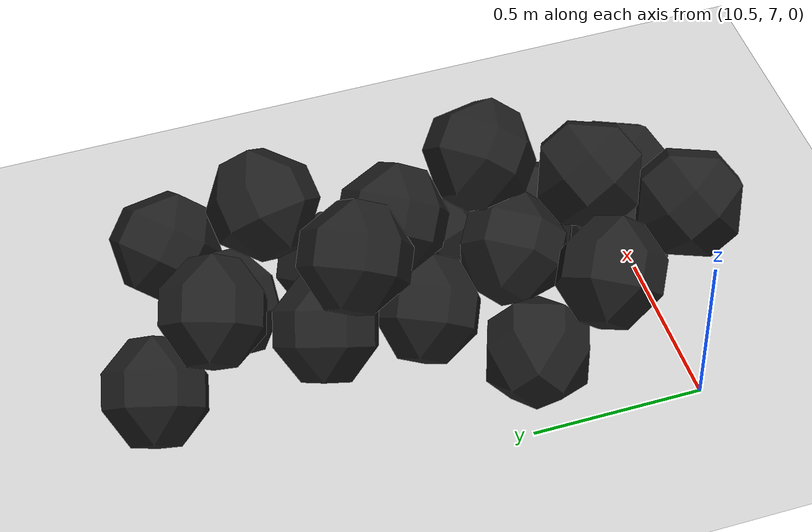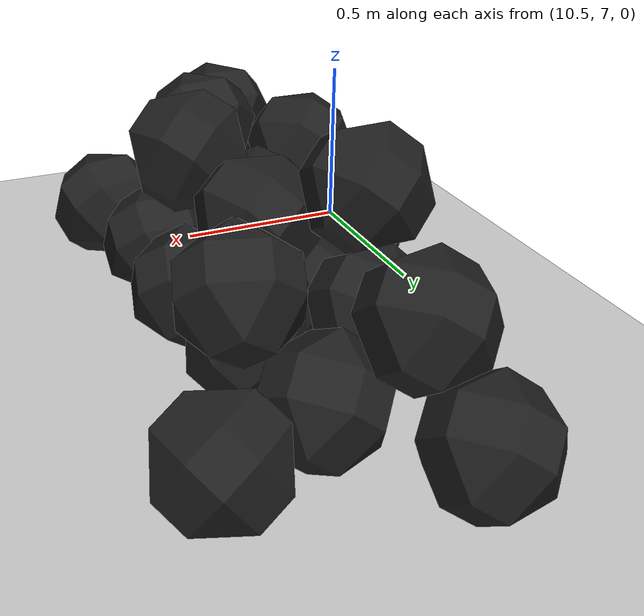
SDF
<sdf version="1.7">
 <world name="default">
  <model name="ground_plane">
   <static>1</static>
   <link name="link">
    <collision name="collision">
     <geometry><plane><normal>0 0 1</normal><size>100 100</size></plane></geometry>
     <surface><friction><ode><mu>100</mu><mu2>50</mu2></ode></friction></surface>
    </collision>
    <visual name="visual">
     <cast_shadows>0</cast_shadows>
     <geometry><plane><normal>0 0 1</normal><size>100 100</size></plane></geometry>
     <material>
      <script><uri>file://media/materials/scripts/gazebo.material</uri><name>Gazebo/Grey</name></script>
     </material>
    </visual>
   </link>
  </model>
  <model name="haoduomiantiaa_0">
   <link name="link_0">
    <inertial>
     <mass>0.2</mass>
     <inertia>
      <ixx>0.166667</ixx>
      <ixy>0</ixy>
      <ixz>0</ixz>
      <iyy>0.166667</iyy>
      <iyz>0</iyz>
      <izz>0.166667</izz>
     </inertia>
    </inertial>
    <visual name="visual">
     <geometry>
      <mesh>
       <uri>/home/lihaoyang/catkin_ws/src/pudong_gazebo/world/stl/haoduomianti.stl</uri>
       <scale>1 1 1</scale>
      </mesh>
     </geometry>
     <material>
      <lighting>1</lighting>
      <script><uri>file://media/materials/scripts/gazebo.material</uri><name>Gazebo/Black</name></script>
      <shader type="pixel"><normal_map>__default__</normal_map></shader>
      <ambient>0.3 0.3 0.3 1</ambient>
      <diffuse>0.7 0.7 0.7 1</diffuse>
      <specular>0.01 0.01 0.01 1</specular>
      <emissive>0 0 0 1</emissive>
     </material>
    </visual>
    <collision name="collision">
     <geometry>
      <mesh>
       <uri>/home/lihaoyang/catkin_ws/src/pudong_gazebo/world/stl/haoduomianti.stl</uri>
       <scale>1 1 1</scale>
      </mesh>
     </geometry>
     <surface>
      <friction>
       <ode><mu>1</mu><mu2>1</mu2><fdir1>0 0 0</fdir1><slip1>0</slip1><slip2>0</slip2></ode>
       <torsional>
        <coefficient>1</coefficient>
        <patch_radius>0</patch_radius>
        <surface_radius>0</surface_radius>
        <use_patch_radius>1</use_patch_radius>
        <ode><slip>0</slip></ode>
       </torsional>
      </friction>
      <bounce><restitution_coefficient>0</restitution_coefficient><threshold>1e+06</threshold></bounce>
      <contact>
       <collide_without_contact>0</collide_without_contact>
       <collide_without_contact_bitmask>1</collide_without_contact_bitmask>
       <collide_bitmask>1</collide_bitmask>
       <ode>
        <soft_cfm>0</soft_cfm>
        <soft_erp>0.2</soft_erp>
        <kp>1e+13</kp>
        <kd>1</kd>
        <max_vel>0.01</max_vel>
        <min_depth>0</min_depth>
       </ode>
       <bullet>
        <split_impulse>1</split_impulse>
        <split_impulse_penetration_threshold>-0.01</split_impulse_penetration_threshold>
        <soft_cfm>0</soft_cfm>
        <soft_erp>0.2</soft_erp>
        <kp>1e+13</kp>
        <kd>1</kd>
       </bullet>
      </contact>
     </surface>
    </collision>
   </link>
   <static>0</static>
   <pose>10.9723 7.07498 -0.114445 0.785431 -0.589548 -1.48621</pose>
  </model>
  <model name="haoduomiantiaa_9">
   <link name="link_0">
    <inertial>
     <mass>0.2</mass>
     <inertia>
      <ixx>0.166667</ixx>
      <ixy>0</ixy>
      <ixz>0</ixz>
      <iyy>0.166667</iyy>
      <iyz>0</iyz>
      <izz>0.166667</izz>
     </inertia>
    </inertial>
    <visual name="visual">
     <geometry>
      <mesh>
       <uri>/home/lihaoyang/catkin_ws/src/pudong_gazebo/world/stl/haoduomianti.stl</uri>
       <scale>1 1 1</scale>
      </mesh>
     </geometry>
     <material>
      <lighting>1</lighting>
      <script><uri>file://media/materials/scripts/gazebo.material</uri><name>Gazebo/Black</name></script>
      <shader type="pixel"><normal_map>__default__</normal_map></shader>
      <ambient>0.3 0.3 0.3 1</ambient>
      <diffuse>0.7 0.7 0.7 1</diffuse>
      <specular>0.01 0.01 0.01 1</specular>
      <emissive>0 0 0 1</emissive>
     </material>
    </visual>
    <collision name="collision">
     <geometry>
      <mesh>
       <uri>/home/lihaoyang/catkin_ws/src/pudong_gazebo/world/stl/haoduomianti.stl</uri>
       <scale>1 1 1</scale>
      </mesh>
     </geometry>
     <surface>
      <friction>
       <ode><mu>1</mu><mu2>1</mu2><fdir1>0 0 0</fdir1><slip1>0</slip1><slip2>0</slip2></ode>
       <torsional>
        <coefficient>1</coefficient>
        <patch_radius>0</patch_radius>
        <surface_radius>0</surface_radius>
        <use_patch_radius>1</use_patch_radius>
        <ode><slip>0</slip></ode>
       </torsional>
      </friction>
      <bounce><restitution_coefficient>0</restitution_coefficient><threshold>1e+06</threshold></bounce>
      <contact>
       <collide_without_contact>0</collide_without_contact>
       <collide_without_contact_bitmask>1</collide_without_contact_bitmask>
       <collide_bitmask>1</collide_bitmask>
       <ode>
        <soft_cfm>0</soft_cfm>
        <soft_erp>0.2</soft_erp>
        <kp>1e+13</kp>
        <kd>1</kd>
        <max_vel>0.01</max_vel>
        <min_depth>0</min_depth>
       </ode>
       <bullet>
        <split_impulse>1</split_impulse>
        <split_impulse_penetration_threshold>-0.01</split_impulse_penetration_threshold>
        <soft_cfm>0</soft_cfm>
        <soft_erp>0.2</soft_erp>
        <kp>1e+13</kp>
        <kd>1</kd>
       </bullet>
      </contact>
     </surface>
    </collision>
   </link>
   <static>0</static>
   <pose>10.7993 7.38438 -0.073529 0.039666 -0.784944 1.19033</pose>
  </model>
  <model name="haoduomiantiaa_17">
   <link name="link_0">
    <inertial>
     <mass>0.2</mass>
     <inertia>
      <ixx>0.166667</ixx>
      <ixy>0</ixy>
      <ixz>0</ixz>
      <iyy>0.166667</iyy>
      <iyz>0</iyz>
      <izz>0.166667</izz>
     </inertia>
    </inertial>
    <visual name="visual">
     <geometry>
      <mesh>
       <uri>/home/lihaoyang/catkin_ws/src/pudong_gazebo/world/stl/haoduomianti.stl</uri>
       <scale>1 1 1</scale>
      </mesh>
     </geometry>
     <material>
      <lighting>1</lighting>
      <script><uri>file://media/materials/scripts/gazebo.material</uri><name>Gazebo/Black</name></script>
      <shader type="pixel"><normal_map>__default__</normal_map></shader>
      <ambient>0.3 0.3 0.3 1</ambient>
      <diffuse>0.7 0.7 0.7 1</diffuse>
      <specular>0.01 0.01 0.01 1</specular>
      <emissive>0 0 0 1</emissive>
     </material>
    </visual>
    <collision name="collision">
     <geometry>
      <mesh>
       <uri>/home/lihaoyang/catkin_ws/src/pudong_gazebo/world/stl/haoduomianti.stl</uri>
       <scale>1 1 1</scale>
      </mesh>
     </geometry>
     <surface>
      <friction>
       <ode><mu>1</mu><mu2>1</mu2><fdir1>0 0 0</fdir1><slip1>0</slip1><slip2>0</slip2></ode>
       <torsional>
        <coefficient>1</coefficient>
        <patch_radius>0</patch_radius>
        <surface_radius>0</surface_radius>
        <use_patch_radius>1</use_patch_radius>
        <ode><slip>0</slip></ode>
       </torsional>
      </friction>
      <bounce><restitution_coefficient>0</restitution_coefficient><threshold>1e+06</threshold></bounce>
      <contact>
       <collide_without_contact>0</collide_without_contact>
       <collide_without_contact_bitmask>1</collide_without_contact_bitmask>
       <collide_bitmask>1</collide_bitmask>
       <ode>
        <soft_cfm>0</soft_cfm>
        <soft_erp>0.2</soft_erp>
        <kp>1e+13</kp>
        <kd>1</kd>
        <max_vel>0.01</max_vel>
        <min_depth>0</min_depth>
       </ode>
       <bullet>
        <split_impulse>1</split_impulse>
        <split_impulse_penetration_threshold>-0.01</split_impulse_penetration_threshold>
        <soft_cfm>0</soft_cfm>
        <soft_erp>0.2</soft_erp>
        <kp>1e+13</kp>
        <kd>1</kd>
       </bullet>
      </contact>
     </surface>
    </collision>
   </link>
   <static>0</static>
   <pose>10.9137 7.67298 -0.115967 0.785386 -0.615306 -0.458</pose>
  </model>
  <model name="haoduomiantiaa_18">
   <link name="link_0">
    <inertial>
     <mass>0.2</mass>
     <inertia>
      <ixx>0.166667</ixx>
      <ixy>0</ixy>
      <ixz>0</ixz>
      <iyy>0.166667</iyy>
      <iyz>0</iyz>
      <izz>0.166667</izz>
     </inertia>
    </inertial>
    <visual name="visual">
     <geometry>
      <mesh>
       <uri>/home/lihaoyang/catkin_ws/src/pudong_gazebo/world/stl/haoduomianti.stl</uri>
       <scale>1 1 1</scale>
      </mesh>
     </geometry>
     <material>
      <lighting>1</lighting>
      <script><uri>file://media/materials/scripts/gazebo.material</uri><name>Gazebo/Black</name></script>
      <shader type="pixel"><normal_map>__default__</normal_map></shader>
      <ambient>0.3 0.3 0.3 1</ambient>
      <diffuse>0.7 0.7 0.7 1</diffuse>
      <specular>0.01 0.01 0.01 1</specular>
      <emissive>0 0 0 1</emissive>
     </material>
    </visual>
    <collision name="collision">
     <geometry>
      <mesh>
       <uri>/home/lihaoyang/catkin_ws/src/pudong_gazebo/world/stl/haoduomianti.stl</uri>
       <scale>1 1 1</scale>
      </mesh>
     </geometry>
     <surface>
      <friction>
       <ode><mu>1</mu><mu2>1</mu2><fdir1>0 0 0</fdir1><slip1>0</slip1><slip2>0</slip2></ode>
       <torsional>
        <coefficient>1</coefficient>
        <patch_radius>0</patch_radius>
        <surface_radius>0</surface_radius>
        <use_patch_radius>1</use_patch_radius>
        <ode><slip>0</slip></ode>
       </torsional>
      </friction>
      <bounce><restitution_coefficient>0</restitution_coefficient><threshold>1e+06</threshold></bounce>
      <contact>
       <collide_without_contact>0</collide_without_contact>
       <collide_without_contact_bitmask>1</collide_without_contact_bitmask>
       <collide_bitmask>1</collide_bitmask>
       <ode>
        <soft_cfm>0</soft_cfm>
        <soft_erp>0.2</soft_erp>
        <kp>1e+13</kp>
        <kd>1</kd>
        <max_vel>0.01</max_vel>
        <min_depth>0</min_depth>
       </ode>
       <bullet>
        <split_impulse>1</split_impulse>
        <split_impulse_penetration_threshold>-0.01</split_impulse_penetration_threshold>
        <soft_cfm>0</soft_cfm>
        <soft_erp>0.2</soft_erp>
        <kp>1e+13</kp>
        <kd>1</kd>
       </bullet>
      </contact>
     </surface>
    </collision>
   </link>
   <static>0</static>
   <pose>11.1073 7.76353 -0.078327 0.1095 -0.782387 -0.480392</pose>
  </model>
  <model name="haoduomiantiaa_20">
   <link name="link_0">
    <inertial>
     <mass>0.2</mass>
     <inertia>
      <ixx>0.166667</ixx>
      <ixy>0</ixy>
      <ixz>0</ixz>
      <iyy>0.166667</iyy>
      <iyz>0</iyz>
      <izz>0.166667</izz>
     </inertia>
    </inertial>
    <visual name="visual">
     <geometry>
      <mesh>
       <uri>/home/lihaoyang/catkin_ws/src/pudong_gazebo/world/stl/haoduomianti.stl</uri>
       <scale>1 1 1</scale>
      </mesh>
     </geometry>
     <material>
      <lighting>1</lighting>
      <script><uri>file://media/materials/scripts/gazebo.material</uri><name>Gazebo/Black</name></script>
      <shader type="pixel"><normal_map>__default__</normal_map></shader>
      <ambient>0.3 0.3 0.3 1</ambient>
      <diffuse>0.7 0.7 0.7 1</diffuse>
      <specular>0.01 0.01 0.01 1</specular>
      <emissive>0 0 0 1</emissive>
     </material>
    </visual>
    <collision name="collision">
     <geometry>
      <mesh>
       <uri>/home/lihaoyang/catkin_ws/src/pudong_gazebo/world/stl/haoduomianti.stl</uri>
       <scale>1 1 1</scale>
      </mesh>
     </geometry>
     <surface>
      <friction>
       <ode><mu>1</mu><mu2>1</mu2><fdir1>0 0 0</fdir1><slip1>0</slip1><slip2>0</slip2></ode>
       <torsional>
        <coefficient>1</coefficient>
        <patch_radius>0</patch_radius>
        <surface_radius>0</surface_radius>
        <use_patch_radius>1</use_patch_radius>
        <ode><slip>0</slip></ode>
       </torsional>
      </friction>
      <bounce><restitution_coefficient>0</restitution_coefficient><threshold>1e+06</threshold></bounce>
      <contact>
       <collide_without_contact>0</collide_without_contact>
       <collide_without_contact_bitmask>1</collide_without_contact_bitmask>
       <collide_bitmask>1</collide_bitmask>
       <ode>
        <soft_cfm>0</soft_cfm>
        <soft_erp>0.2</soft_erp>
        <kp>1e+13</kp>
        <kd>1</kd>
        <max_vel>0.01</max_vel>
        <min_depth>0</min_depth>
       </ode>
       <bullet>
        <split_impulse>1</split_impulse>
        <split_impulse_penetration_threshold>-0.01</split_impulse_penetration_threshold>
        <soft_cfm>0</soft_cfm>
        <soft_erp>0.2</soft_erp>
        <kp>1e+13</kp>
        <kd>1</kd>
       </bullet>
      </contact>
     </surface>
    </collision>
   </link>
   <static>0</static>
   <pose>10.902 7.96113 -0.04447 0.72085 -0.741952 -0.305091</pose>
  </model>
  <model name="haoduomiantiaa_25">
   <link name="link_0">
    <inertial>
     <mass>0.2</mass>
     <inertia>
      <ixx>0.166667</ixx>
      <ixy>0</ixy>
      <ixz>0</ixz>
      <iyy>0.166667</iyy>
      <iyz>0</iyz>
      <izz>0.166667</izz>
     </inertia>
    </inertial>
    <visual name="visual">
     <geometry>
      <mesh>
       <uri>/home/lihaoyang/catkin_ws/src/pudong_gazebo/world/stl/haoduomianti.stl</uri>
       <scale>1 1 1</scale>
      </mesh>
     </geometry>
     <material>
      <lighting>1</lighting>
      <script><uri>file://media/materials/scripts/gazebo.material</uri><name>Gazebo/Black</name></script>
      <shader type="pixel"><normal_map>__default__</normal_map></shader>
      <ambient>0.3 0.3 0.3 1</ambient>
      <diffuse>0.7 0.7 0.7 1</diffuse>
      <specular>0.01 0.01 0.01 1</specular>
      <emissive>0 0 0 1</emissive>
     </material>
    </visual>
    <collision name="collision">
     <geometry>
      <mesh>
       <uri>/home/lihaoyang/catkin_ws/src/pudong_gazebo/world/stl/haoduomianti.stl</uri>
       <scale>1 1 1</scale>
      </mesh>
     </geometry>
     <surface>
      <friction>
       <ode><mu>1</mu><mu2>1</mu2><fdir1>0 0 0</fdir1><slip1>0</slip1><slip2>0</slip2></ode>
       <torsional>
        <coefficient>1</coefficient>
        <patch_radius>0</patch_radius>
        <surface_radius>0</surface_radius>
        <use_patch_radius>1</use_patch_radius>
        <ode><slip>0</slip></ode>
       </torsional>
      </friction>
      <bounce><restitution_coefficient>0</restitution_coefficient><threshold>1e+06</threshold></bounce>
      <contact>
       <collide_without_contact>0</collide_without_contact>
       <collide_without_contact_bitmask>1</collide_without_contact_bitmask>
       <collide_bitmask>1</collide_bitmask>
       <ode>
        <soft_cfm>0</soft_cfm>
        <soft_erp>0.2</soft_erp>
        <kp>1e+13</kp>
        <kd>1</kd>
        <max_vel>0.01</max_vel>
        <min_depth>0</min_depth>
       </ode>
       <bullet>
        <split_impulse>1</split_impulse>
        <split_impulse_penetration_threshold>-0.01</split_impulse_penetration_threshold>
        <soft_cfm>0</soft_cfm>
        <soft_erp>0.2</soft_erp>
        <kp>1e+13</kp>
        <kd>1</kd>
       </bullet>
      </contact>
     </surface>
    </collision>
   </link>
   <static>0</static>
   <pose>11.1221 8.16661 -0.106418 0.785399 -0.437494 1.99127</pose>
  </model>
  <model name="haoduomiantiaa_30">
   <link name="link_0">
    <inertial>
     <mass>0.2</mass>
     <inertia>
      <ixx>0.166667</ixx>
      <ixy>0</ixy>
      <ixz>0</ixz>
      <iyy>0.166667</iyy>
      <iyz>0</iyz>
      <izz>0.166667</izz>
     </inertia>
    </inertial>
    <visual name="visual">
     <geometry>
      <mesh>
       <uri>/home/lihaoyang/catkin_ws/src/pudong_gazebo/world/stl/haoduomianti.stl</uri>
       <scale>1 1 1</scale>
      </mesh>
     </geometry>
     <material>
      <lighting>1</lighting>
      <script><uri>file://media/materials/scripts/gazebo.material</uri><name>Gazebo/Black</name></script>
      <shader type="pixel"><normal_map>__default__</normal_map></shader>
      <ambient>0.3 0.3 0.3 1</ambient>
      <diffuse>0.7 0.7 0.7 1</diffuse>
      <specular>0.01 0.01 0.01 1</specular>
      <emissive>0 0 0 1</emissive>
     </material>
    </visual>
    <collision name="collision">
     <geometry>
      <mesh>
       <uri>/home/lihaoyang/catkin_ws/src/pudong_gazebo/world/stl/haoduomianti.stl</uri>
       <scale>1 1 1</scale>
      </mesh>
     </geometry>
     <surface>
      <friction>
       <ode><mu>1</mu><mu2>1</mu2><fdir1>0 0 0</fdir1><slip1>0</slip1><slip2>0</slip2></ode>
       <torsional>
        <coefficient>1</coefficient>
        <patch_radius>0</patch_radius>
        <surface_radius>0</surface_radius>
        <use_patch_radius>1</use_patch_radius>
        <ode><slip>0</slip></ode>
       </torsional>
      </friction>
      <bounce><restitution_coefficient>0</restitution_coefficient><threshold>1e+06</threshold></bounce>
      <contact>
       <collide_without_contact>0</collide_without_contact>
       <collide_without_contact_bitmask>1</collide_without_contact_bitmask>
       <collide_bitmask>1</collide_bitmask>
       <ode>
        <soft_cfm>0</soft_cfm>
        <soft_erp>0.2</soft_erp>
        <kp>1e+13</kp>
        <kd>1</kd>
        <max_vel>0.01</max_vel>
        <min_depth>0</min_depth>
       </ode>
       <bullet>
        <split_impulse>1</split_impulse>
        <split_impulse_penetration_threshold>-0.01</split_impulse_penetration_threshold>
        <soft_cfm>0</soft_cfm>
        <soft_erp>0.2</soft_erp>
        <kp>1e+13</kp>
        <kd>1</kd>
       </bullet>
      </contact>
     </surface>
    </collision>
   </link>
   <static>0</static>
   <pose>11.1895 7.27631 -0.115438 0.786446 -0.615971 -1.58038</pose>
  </model>
  <model name="haoduomiantiaa_36">
   <link name="link_0">
    <inertial>
     <mass>0.2</mass>
     <inertia>
      <ixx>0.166667</ixx>
      <ixy>0</ixy>
      <ixz>0</ixz>
      <iyy>0.166667</iyy>
      <iyz>0</iyz>
      <izz>0.166667</izz>
     </inertia>
    </inertial>
    <visual name="visual">
     <geometry>
      <mesh>
       <uri>/home/lihaoyang/catkin_ws/src/pudong_gazebo/world/stl/haoduomianti.stl</uri>
       <scale>1 1 1</scale>
      </mesh>
     </geometry>
     <material>
      <lighting>1</lighting>
      <script><uri>file://media/materials/scripts/gazebo.material</uri><name>Gazebo/Black</name></script>
      <shader type="pixel"><normal_map>__default__</normal_map></shader>
      <ambient>0.3 0.3 0.3 1</ambient>
      <diffuse>0.7 0.7 0.7 1</diffuse>
      <specular>0.01 0.01 0.01 1</specular>
      <emissive>0 0 0 1</emissive>
     </material>
    </visual>
    <collision name="collision">
     <geometry>
      <mesh>
       <uri>/home/lihaoyang/catkin_ws/src/pudong_gazebo/world/stl/haoduomianti.stl</uri>
       <scale>1 1 1</scale>
      </mesh>
     </geometry>
     <surface>
      <friction>
       <ode><mu>1</mu><mu2>1</mu2><fdir1>0 0 0</fdir1><slip1>0</slip1><slip2>0</slip2></ode>
       <torsional>
        <coefficient>1</coefficient>
        <patch_radius>0</patch_radius>
        <surface_radius>0</surface_radius>
        <use_patch_radius>1</use_patch_radius>
        <ode><slip>0</slip></ode>
       </torsional>
      </friction>
      <bounce><restitution_coefficient>0</restitution_coefficient><threshold>1e+06</threshold></bounce>
      <contact>
       <collide_without_contact>0</collide_without_contact>
       <collide_without_contact_bitmask>1</collide_without_contact_bitmask>
       <collide_bitmask>1</collide_bitmask>
       <ode>
        <soft_cfm>0</soft_cfm>
        <soft_erp>0.2</soft_erp>
        <kp>1e+13</kp>
        <kd>1</kd>
        <max_vel>0.01</max_vel>
        <min_depth>0</min_depth>
       </ode>
       <bullet>
        <split_impulse>1</split_impulse>
        <split_impulse_penetration_threshold>-0.01</split_impulse_penetration_threshold>
        <soft_cfm>0</soft_cfm>
        <soft_erp>0.2</soft_erp>
        <kp>1e+13</kp>
        <kd>1</kd>
       </bullet>
      </contact>
     </surface>
    </collision>
   </link>
   <static>0</static>
   <pose>10.8976 7.45353 0.017799 0.455478 -0.67998 -2.44371</pose>
  </model>
  <model name="haoduomiantiaa_47">
   <link name="link_0">
    <inertial>
     <mass>0.2</mass>
     <inertia>
      <ixx>0.166667</ixx>
      <ixy>0</ixy>
      <ixz>0</ixz>
      <iyy>0.166667</iyy>
      <iyz>0</iyz>
      <izz>0.166667</izz>
     </inertia>
    </inertial>
    <visual name="visual">
     <geometry>
      <mesh>
       <uri>/home/lihaoyang/catkin_ws/src/pudong_gazebo/world/stl/haoduomianti.stl</uri>
       <scale>1 1 1</scale>
      </mesh>
     </geometry>
     <material>
      <lighting>1</lighting>
      <script><uri>file://media/materials/scripts/gazebo.material</uri><name>Gazebo/Black</name></script>
      <shader type="pixel"><normal_map>__default__</normal_map></shader>
      <ambient>0.3 0.3 0.3 1</ambient>
      <diffuse>0.7 0.7 0.7 1</diffuse>
      <specular>0.01 0.01 0.01 1</specular>
      <emissive>0 0 0 1</emissive>
     </material>
    </visual>
    <collision name="collision">
     <geometry>
      <mesh>
       <uri>/home/lihaoyang/catkin_ws/src/pudong_gazebo/world/stl/haoduomianti.stl</uri>
       <scale>1 1 1</scale>
      </mesh>
     </geometry>
     <surface>
      <friction>
       <ode><mu>1</mu><mu2>1</mu2><fdir1>0 0 0</fdir1><slip1>0</slip1><slip2>0</slip2></ode>
       <torsional>
        <coefficient>1</coefficient>
        <patch_radius>0</patch_radius>
        <surface_radius>0</surface_radius>
        <use_patch_radius>1</use_patch_radius>
        <ode><slip>0</slip></ode>
       </torsional>
      </friction>
      <bounce><restitution_coefficient>0</restitution_coefficient><threshold>1e+06</threshold></bounce>
      <contact>
       <collide_without_contact>0</collide_without_contact>
       <collide_without_contact_bitmask>1</collide_without_contact_bitmask>
       <collide_bitmask>1</collide_bitmask>
       <ode>
        <soft_cfm>0</soft_cfm>
        <soft_erp>0.2</soft_erp>
        <kp>1e+13</kp>
        <kd>1</kd>
        <max_vel>0.01</max_vel>
        <min_depth>0</min_depth>
       </ode>
       <bullet>
        <split_impulse>1</split_impulse>
        <split_impulse_penetration_threshold>-0.01</split_impulse_penetration_threshold>
        <soft_cfm>0</soft_cfm>
        <soft_erp>0.2</soft_erp>
        <kp>1e+13</kp>
        <kd>1</kd>
       </bullet>
      </contact>
     </surface>
    </collision>
   </link>
   <static>0</static>
   <pose>11.2126 7.57384 -0.113089 0.726808 -0.641761 0.38696</pose>
  </model>
  <model name="haoduomiantiaa_54">
   <link name="link_0">
    <inertial>
     <mass>0.2</mass>
     <inertia>
      <ixx>0.166667</ixx>
      <ixy>0</ixy>
      <ixz>0</ixz>
      <iyy>0.166667</iyy>
      <iyz>0</iyz>
      <izz>0.166667</izz>
     </inertia>
    </inertial>
    <visual name="visual">
     <geometry>
      <mesh>
       <uri>/home/lihaoyang/catkin_ws/src/pudong_gazebo/world/stl/haoduomianti.stl</uri>
       <scale>1 1 1</scale>
      </mesh>
     </geometry>
     <material>
      <lighting>1</lighting>
      <script><uri>file://media/materials/scripts/gazebo.material</uri><name>Gazebo/Black</name></script>
      <shader type="pixel"><normal_map>__default__</normal_map></shader>
      <ambient>0.3 0.3 0.3 1</ambient>
      <diffuse>0.7 0.7 0.7 1</diffuse>
      <specular>0.01 0.01 0.01 1</specular>
      <emissive>0 0 0 1</emissive>
     </material>
    </visual>
    <collision name="collision">
     <geometry>
      <mesh>
       <uri>/home/lihaoyang/catkin_ws/src/pudong_gazebo/world/stl/haoduomianti.stl</uri>
       <scale>1 1 1</scale>
      </mesh>
     </geometry>
     <surface>
      <friction>
       <ode><mu>1</mu><mu2>1</mu2><fdir1>0 0 0</fdir1><slip1>0</slip1><slip2>0</slip2></ode>
       <torsional>
        <coefficient>1</coefficient>
        <patch_radius>0</patch_radius>
        <surface_radius>0</surface_radius>
        <use_patch_radius>1</use_patch_radius>
        <ode><slip>0</slip></ode>
       </torsional>
      </friction>
      <bounce><restitution_coefficient>0</restitution_coefficient><threshold>1e+06</threshold></bounce>
      <contact>
       <collide_without_contact>0</collide_without_contact>
       <collide_without_contact_bitmask>1</collide_without_contact_bitmask>
       <collide_bitmask>1</collide_bitmask>
       <ode>
        <soft_cfm>0</soft_cfm>
        <soft_erp>0.2</soft_erp>
        <kp>1e+13</kp>
        <kd>1</kd>
        <max_vel>0.01</max_vel>
        <min_depth>0</min_depth>
       </ode>
       <bullet>
        <split_impulse>1</split_impulse>
        <split_impulse_penetration_threshold>-0.01</split_impulse_penetration_threshold>
        <soft_cfm>0</soft_cfm>
        <soft_erp>0.2</soft_erp>
        <kp>1e+13</kp>
        <kd>1</kd>
       </bullet>
      </contact>
     </surface>
    </collision>
   </link>
   <static>0</static>
   <pose>11.2492 7.00829 -0.107902 0.956609 -0.685152 0.658454</pose>
  </model>
  <model name="haoduomiantiaa_74">
   <link name="link_0">
    <inertial>
     <mass>0.2</mass>
     <inertia>
      <ixx>0.166667</ixx>
      <ixy>0</ixy>
      <ixz>0</ixz>
      <iyy>0.166667</iyy>
      <iyz>0</iyz>
      <izz>0.166667</izz>
     </inertia>
    </inertial>
    <visual name="visual">
     <geometry>
      <mesh>
       <uri>/home/lihaoyang/catkin_ws/src/pudong_gazebo/world/stl/haoduomianti.stl</uri>
       <scale>1 1 1</scale>
      </mesh>
     </geometry>
     <material>
      <lighting>1</lighting>
      <script><uri>file://media/materials/scripts/gazebo.material</uri><name>Gazebo/Black</name></script>
      <shader type="pixel"><normal_map>__default__</normal_map></shader>
      <ambient>0.3 0.3 0.3 1</ambient>
      <diffuse>0.7 0.7 0.7 1</diffuse>
      <specular>0.01 0.01 0.01 1</specular>
      <emissive>0 0 0 1</emissive>
     </material>
    </visual>
    <collision name="collision">
     <geometry>
      <mesh>
       <uri>/home/lihaoyang/catkin_ws/src/pudong_gazebo/world/stl/haoduomianti.stl</uri>
       <scale>1 1 1</scale>
      </mesh>
     </geometry>
     <surface>
      <friction>
       <ode><mu>1</mu><mu2>1</mu2><fdir1>0 0 0</fdir1><slip1>0</slip1><slip2>0</slip2></ode>
       <torsional>
        <coefficient>1</coefficient>
        <patch_radius>0</patch_radius>
        <surface_radius>0</surface_radius>
        <use_patch_radius>1</use_patch_radius>
        <ode><slip>0</slip></ode>
       </torsional>
      </friction>
      <bounce><restitution_coefficient>0</restitution_coefficient><threshold>1e+06</threshold></bounce>
      <contact>
       <collide_without_contact>0</collide_without_contact>
       <collide_without_contact_bitmask>1</collide_without_contact_bitmask>
       <collide_bitmask>1</collide_bitmask>
       <ode>
        <soft_cfm>0</soft_cfm>
        <soft_erp>0.2</soft_erp>
        <kp>1e+13</kp>
        <kd>1</kd>
        <max_vel>0.01</max_vel>
        <min_depth>0</min_depth>
       </ode>
       <bullet>
        <split_impulse>1</split_impulse>
        <split_impulse_penetration_threshold>-0.01</split_impulse_penetration_threshold>
        <soft_cfm>0</soft_cfm>
        <soft_erp>0.2</soft_erp>
        <kp>1e+13</kp>
        <kd>1</kd>
       </bullet>
      </contact>
     </surface>
    </collision>
   </link>
   <static>0</static>
   <pose>11.2385 8.05949 0.109585 0.782162 -0.640487 2.3146</pose>
  </model>
  <model name="haoduomiantiaa_84">
   <link name="link_0">
    <inertial>
     <mass>0.2</mass>
     <inertia>
      <ixx>0.166667</ixx>
      <ixy>0</ixy>
      <ixz>0</ixz>
      <iyy>0.166667</iyy>
      <iyz>0</iyz>
      <izz>0.166667</izz>
     </inertia>
    </inertial>
    <visual name="visual">
     <geometry>
      <mesh>
       <uri>/home/lihaoyang/catkin_ws/src/pudong_gazebo/world/stl/haoduomianti.stl</uri>
       <scale>1 1 1</scale>
      </mesh>
     </geometry>
     <material>
      <lighting>1</lighting>
      <script><uri>file://media/materials/scripts/gazebo.material</uri><name>Gazebo/Black</name></script>
      <shader type="pixel"><normal_map>__default__</normal_map></shader>
      <ambient>0.3 0.3 0.3 1</ambient>
      <diffuse>0.7 0.7 0.7 1</diffuse>
      <specular>0.01 0.01 0.01 1</specular>
      <emissive>0 0 0 1</emissive>
     </material>
    </visual>
    <collision name="collision">
     <geometry>
      <mesh>
       <uri>/home/lihaoyang/catkin_ws/src/pudong_gazebo/world/stl/haoduomianti.stl</uri>
       <scale>1 1 1</scale>
      </mesh>
     </geometry>
     <surface>
      <friction>
       <ode><mu>1</mu><mu2>1</mu2><fdir1>0 0 0</fdir1><slip1>0</slip1><slip2>0</slip2></ode>
       <torsional>
        <coefficient>1</coefficient>
        <patch_radius>0</patch_radius>
        <surface_radius>0</surface_radius>
        <use_patch_radius>1</use_patch_radius>
        <ode><slip>0</slip></ode>
       </torsional>
      </friction>
      <bounce><restitution_coefficient>0</restitution_coefficient><threshold>1e+06</threshold></bounce>
      <contact>
       <collide_without_contact>0</collide_without_contact>
       <collide_without_contact_bitmask>1</collide_without_contact_bitmask>
       <collide_bitmask>1</collide_bitmask>
       <ode>
        <soft_cfm>0</soft_cfm>
        <soft_erp>0.2</soft_erp>
        <kp>1e+13</kp>
        <kd>1</kd>
        <max_vel>0.01</max_vel>
        <min_depth>0</min_depth>
       </ode>
       <bullet>
        <split_impulse>1</split_impulse>
        <split_impulse_penetration_threshold>-0.01</split_impulse_penetration_threshold>
        <soft_cfm>0</soft_cfm>
        <soft_erp>0.2</soft_erp>
        <kp>1e+13</kp>
        <kd>1</kd>
       </bullet>
      </contact>
     </surface>
    </collision>
   </link>
   <static>0</static>
   <pose>11.384 8.3173 -0.115478 0.78538 -0.615499 -2.94543</pose>
  </model>
  <model name="haoduomiantiaa_91">
   <link name="link_0">
    <inertial>
     <mass>0.2</mass>
     <inertia>
      <ixx>0.166667</ixx>
      <ixy>0</ixy>
      <ixz>0</ixz>
      <iyy>0.166667</iyy>
      <iyz>0</iyz>
      <izz>0.166667</izz>
     </inertia>
    </inertial>
    <visual name="visual">
     <geometry>
      <mesh>
       <uri>/home/lihaoyang/catkin_ws/src/pudong_gazebo/world/stl/haoduomianti.stl</uri>
       <scale>1 1 1</scale>
      </mesh>
     </geometry>
     <material>
      <lighting>1</lighting>
      <script><uri>file://media/materials/scripts/gazebo.material</uri><name>Gazebo/Black</name></script>
      <shader type="pixel"><normal_map>__default__</normal_map></shader>
      <ambient>0.3 0.3 0.3 1</ambient>
      <diffuse>0.7 0.7 0.7 1</diffuse>
      <specular>0.01 0.01 0.01 1</specular>
      <emissive>0 0 0 1</emissive>
     </material>
    </visual>
    <collision name="collision">
     <geometry>
      <mesh>
       <uri>/home/lihaoyang/catkin_ws/src/pudong_gazebo/world/stl/haoduomianti.stl</uri>
       <scale>1 1 1</scale>
      </mesh>
     </geometry>
     <surface>
      <friction>
       <ode><mu>1</mu><mu2>1</mu2><fdir1>0 0 0</fdir1><slip1>0</slip1><slip2>0</slip2></ode>
       <torsional>
        <coefficient>1</coefficient>
        <patch_radius>0</patch_radius>
        <surface_radius>0</surface_radius>
        <use_patch_radius>1</use_patch_radius>
        <ode><slip>0</slip></ode>
       </torsional>
      </friction>
      <bounce><restitution_coefficient>0</restitution_coefficient><threshold>1e+06</threshold></bounce>
      <contact>
       <collide_without_contact>0</collide_without_contact>
       <collide_without_contact_bitmask>1</collide_without_contact_bitmask>
       <collide_bitmask>1</collide_bitmask>
       <ode>
        <soft_cfm>0</soft_cfm>
        <soft_erp>0.2</soft_erp>
        <kp>1e+13</kp>
        <kd>1</kd>
        <max_vel>0.01</max_vel>
        <min_depth>0</min_depth>
       </ode>
       <bullet>
        <split_impulse>1</split_impulse>
        <split_impulse_penetration_threshold>-0.01</split_impulse_penetration_threshold>
        <soft_cfm>0</soft_cfm>
        <soft_erp>0.2</soft_erp>
        <kp>1e+13</kp>
        <kd>1</kd>
       </bullet>
      </contact>
     </surface>
    </collision>
   </link>
   <static>0</static>
   <pose>10.8561 8.48035 -0.115526 0.785432 -0.615484 1.81669</pose>
  </model>
  <model name="haoduomiantiaa_93">
   <link name="link_0">
    <inertial>
     <mass>0.2</mass>
     <inertia>
      <ixx>0.166667</ixx>
      <ixy>0</ixy>
      <ixz>0</ixz>
      <iyy>0.166667</iyy>
      <iyz>0</iyz>
      <izz>0.166667</izz>
     </inertia>
    </inertial>
    <visual name="visual">
     <geometry>
      <mesh>
       <uri>/home/lihaoyang/catkin_ws/src/pudong_gazebo/world/stl/haoduomianti.stl</uri>
       <scale>1 1 1</scale>
      </mesh>
     </geometry>
     <material>
      <lighting>1</lighting>
      <script><uri>file://media/materials/scripts/gazebo.material</uri><name>Gazebo/Black</name></script>
      <shader type="pixel"><normal_map>__default__</normal_map></shader>
      <ambient>0.3 0.3 0.3 1</ambient>
      <diffuse>0.7 0.7 0.7 1</diffuse>
      <specular>0.01 0.01 0.01 1</specular>
      <emissive>0 0 0 1</emissive>
     </material>
    </visual>
    <collision name="collision">
     <geometry>
      <mesh>
       <uri>/home/lihaoyang/catkin_ws/src/pudong_gazebo/world/stl/haoduomianti.stl</uri>
       <scale>1 1 1</scale>
      </mesh>
     </geometry>
     <surface>
      <friction>
       <ode><mu>1</mu><mu2>1</mu2><fdir1>0 0 0</fdir1><slip1>0</slip1><slip2>0</slip2></ode>
       <torsional>
        <coefficient>1</coefficient>
        <patch_radius>0</patch_radius>
        <surface_radius>0</surface_radius>
        <use_patch_radius>1</use_patch_radius>
        <ode><slip>0</slip></ode>
       </torsional>
      </friction>
      <bounce><restitution_coefficient>0</restitution_coefficient><threshold>1e+06</threshold></bounce>
      <contact>
       <collide_without_contact>0</collide_without_contact>
       <collide_without_contact_bitmask>1</collide_without_contact_bitmask>
       <collide_bitmask>1</collide_bitmask>
       <ode>
        <soft_cfm>0</soft_cfm>
        <soft_erp>0.2</soft_erp>
        <kp>1e+13</kp>
        <kd>1</kd>
        <max_vel>0.01</max_vel>
        <min_depth>0</min_depth>
       </ode>
       <bullet>
        <split_impulse>1</split_impulse>
        <split_impulse_penetration_threshold>-0.01</split_impulse_penetration_threshold>
        <soft_cfm>0</soft_cfm>
        <soft_erp>0.2</soft_erp>
        <kp>1e+13</kp>
        <kd>1</kd>
       </bullet>
      </contact>
     </surface>
    </collision>
   </link>
   <static>0</static>
   <pose>10.8916 6.91854 0.112856 0.886094 -0.607603 -1.46419</pose>
  </model>
  <model name="haoduomiantiaa_96">
   <link name="link_0">
    <inertial>
     <mass>0.2</mass>
     <inertia>
      <ixx>0.166667</ixx>
      <ixy>0</ixy>
      <ixz>0</ixz>
      <iyy>0.166667</iyy>
      <iyz>0</iyz>
      <izz>0.166667</izz>
     </inertia>
    </inertial>
    <visual name="visual">
     <geometry>
      <mesh>
       <uri>/home/lihaoyang/catkin_ws/src/pudong_gazebo/world/stl/haoduomianti.stl</uri>
       <scale>1 1 1</scale>
      </mesh>
     </geometry>
     <material>
      <lighting>1</lighting>
      <script><uri>file://media/materials/scripts/gazebo.material</uri><name>Gazebo/Black</name></script>
      <shader type="pixel"><normal_map>__default__</normal_map></shader>
      <ambient>0.3 0.3 0.3 1</ambient>
      <diffuse>0.7 0.7 0.7 1</diffuse>
      <specular>0.01 0.01 0.01 1</specular>
      <emissive>0 0 0 1</emissive>
     </material>
    </visual>
    <collision name="collision">
     <geometry>
      <mesh>
       <uri>/home/lihaoyang/catkin_ws/src/pudong_gazebo/world/stl/haoduomianti.stl</uri>
       <scale>1 1 1</scale>
      </mesh>
     </geometry>
     <surface>
      <friction>
       <ode><mu>1</mu><mu2>1</mu2><fdir1>0 0 0</fdir1><slip1>0</slip1><slip2>0</slip2></ode>
       <torsional>
        <coefficient>1</coefficient>
        <patch_radius>0</patch_radius>
        <surface_radius>0</surface_radius>
        <use_patch_radius>1</use_patch_radius>
        <ode><slip>0</slip></ode>
       </torsional>
      </friction>
      <bounce><restitution_coefficient>0</restitution_coefficient><threshold>1e+06</threshold></bounce>
      <contact>
       <collide_without_contact>0</collide_without_contact>
       <collide_without_contact_bitmask>1</collide_without_contact_bitmask>
       <collide_bitmask>1</collide_bitmask>
       <ode>
        <soft_cfm>0</soft_cfm>
        <soft_erp>0.2</soft_erp>
        <kp>1e+13</kp>
        <kd>1</kd>
        <max_vel>0.01</max_vel>
        <min_depth>0</min_depth>
       </ode>
       <bullet>
        <split_impulse>1</split_impulse>
        <split_impulse_penetration_threshold>-0.01</split_impulse_penetration_threshold>
        <soft_cfm>0</soft_cfm>
        <soft_erp>0.2</soft_erp>
        <kp>1e+13</kp>
        <kd>1</kd>
       </bullet>
      </contact>
     </surface>
    </collision>
   </link>
   <static>0</static>
   <pose>11.1056 7.4585 0.211597 0.722255 -0.46797 -0.701604</pose>
  </model>
  <model name="haoduomiantiaa_99">
   <link name="link_0">
    <inertial>
     <mass>0.2</mass>
     <inertia>
      <ixx>0.166667</ixx>
      <ixy>0</ixy>
      <ixz>0</ixz>
      <iyy>0.166667</iyy>
      <iyz>0</iyz>
      <izz>0.166667</izz>
     </inertia>
    </inertial>
    <visual name="visual">
     <geometry>
      <mesh>
       <uri>/home/lihaoyang/catkin_ws/src/pudong_gazebo/world/stl/haoduomianti.stl</uri>
       <scale>1 1 1</scale>
      </mesh>
     </geometry>
     <material>
      <lighting>1</lighting>
      <script><uri>file://media/materials/scripts/gazebo.material</uri><name>Gazebo/Black</name></script>
      <shader type="pixel"><normal_map>__default__</normal_map></shader>
      <ambient>0.3 0.3 0.3 1</ambient>
      <diffuse>0.7 0.7 0.7 1</diffuse>
      <specular>0.01 0.01 0.01 1</specular>
      <emissive>0 0 0 1</emissive>
     </material>
    </visual>
    <collision name="collision">
     <geometry>
      <mesh>
       <uri>/home/lihaoyang/catkin_ws/src/pudong_gazebo/world/stl/haoduomianti.stl</uri>
       <scale>1 1 1</scale>
      </mesh>
     </geometry>
     <surface>
      <friction>
       <ode><mu>1</mu><mu2>1</mu2><fdir1>0 0 0</fdir1><slip1>0</slip1><slip2>0</slip2></ode>
       <torsional>
        <coefficient>1</coefficient>
        <patch_radius>0</patch_radius>
        <surface_radius>0</surface_radius>
        <use_patch_radius>1</use_patch_radius>
        <ode><slip>0</slip></ode>
       </torsional>
      </friction>
      <bounce><restitution_coefficient>0</restitution_coefficient><threshold>1e+06</threshold></bounce>
      <contact>
       <collide_without_contact>0</collide_without_contact>
       <collide_without_contact_bitmask>1</collide_without_contact_bitmask>
       <collide_bitmask>1</collide_bitmask>
       <ode>
        <soft_cfm>0</soft_cfm>
        <soft_erp>0.2</soft_erp>
        <kp>1e+13</kp>
        <kd>1</kd>
        <max_vel>0.01</max_vel>
        <min_depth>0</min_depth>
       </ode>
       <bullet>
        <split_impulse>1</split_impulse>
        <split_impulse_penetration_threshold>-0.01</split_impulse_penetration_threshold>
        <soft_cfm>0</soft_cfm>
        <soft_erp>0.2</soft_erp>
        <kp>1e+13</kp>
        <kd>1</kd>
       </bullet>
      </contact>
     </surface>
    </collision>
   </link>
   <static>0</static>
   <pose>10.7177 7.24956 0.08863 0.971508 -0.570212 -0.518016</pose>
  </model>
  <model name="haoduomiantiaa_101">
   <link name="link_0">
    <inertial>
     <mass>0.2</mass>
     <inertia>
      <ixx>0.166667</ixx>
      <ixy>0</ixy>
      <ixz>0</ixz>
      <iyy>0.166667</iyy>
      <iyz>0</iyz>
      <izz>0.166667</izz>
     </inertia>
    </inertial>
    <visual name="visual">
     <geometry>
      <mesh>
       <uri>/home/lihaoyang/catkin_ws/src/pudong_gazebo/world/stl/haoduomianti.stl</uri>
       <scale>1 1 1</scale>
      </mesh>
     </geometry>
     <material>
      <lighting>1</lighting>
      <script><uri>file://media/materials/scripts/gazebo.material</uri><name>Gazebo/Black</name></script>
      <shader type="pixel"><normal_map>__default__</normal_map></shader>
      <ambient>0.3 0.3 0.3 1</ambient>
      <diffuse>0.7 0.7 0.7 1</diffuse>
      <specular>0.01 0.01 0.01 1</specular>
      <emissive>0 0 0 1</emissive>
     </material>
    </visual>
    <collision name="collision">
     <geometry>
      <mesh>
       <uri>/home/lihaoyang/catkin_ws/src/pudong_gazebo/world/stl/haoduomianti.stl</uri>
       <scale>1 1 1</scale>
      </mesh>
     </geometry>
     <surface>
      <friction>
       <ode><mu>1</mu><mu2>1</mu2><fdir1>0 0 0</fdir1><slip1>0</slip1><slip2>0</slip2></ode>
       <torsional>
        <coefficient>1</coefficient>
        <patch_radius>0</patch_radius>
        <surface_radius>0</surface_radius>
        <use_patch_radius>1</use_patch_radius>
        <ode><slip>0</slip></ode>
       </torsional>
      </friction>
      <bounce><restitution_coefficient>0</restitution_coefficient><threshold>1e+06</threshold></bounce>
      <contact>
       <collide_without_contact>0</collide_without_contact>
       <collide_without_contact_bitmask>1</collide_without_contact_bitmask>
       <collide_bitmask>1</collide_bitmask>
       <ode>
        <soft_cfm>0</soft_cfm>
        <soft_erp>0.2</soft_erp>
        <kp>1e+13</kp>
        <kd>1</kd>
        <max_vel>0.01</max_vel>
        <min_depth>0</min_depth>
       </ode>
       <bullet>
        <split_impulse>1</split_impulse>
        <split_impulse_penetration_threshold>-0.01</split_impulse_penetration_threshold>
        <soft_cfm>0</soft_cfm>
        <soft_erp>0.2</soft_erp>
        <kp>1e+13</kp>
        <kd>1</kd>
       </bullet>
      </contact>
     </surface>
    </collision>
   </link>
   <static>0</static>
   <pose>11.0089 7.16741 0.166153 0.827517 -0.610012 0.616023</pose>
  </model>
  <model name="haoduomiantiaa_107">
   <link name="link_0">
    <inertial>
     <mass>0.2</mass>
     <inertia>
      <ixx>0.166667</ixx>
      <ixy>0</ixy>
      <ixz>0</ixz>
      <iyy>0.166667</iyy>
      <iyz>0</iyz>
      <izz>0.166667</izz>
     </inertia>
    </inertial>
    <visual name="visual">
     <geometry>
      <mesh>
       <uri>/home/lihaoyang/catkin_ws/src/pudong_gazebo/world/stl/haoduomianti.stl</uri>
       <scale>1 1 1</scale>
      </mesh>
     </geometry>
     <material>
      <lighting>1</lighting>
      <script><uri>file://media/materials/scripts/gazebo.material</uri><name>Gazebo/Black</name></script>
      <shader type="pixel"><normal_map>__default__</normal_map></shader>
      <ambient>0.3 0.3 0.3 1</ambient>
      <diffuse>0.7 0.7 0.7 1</diffuse>
      <specular>0.01 0.01 0.01 1</specular>
      <emissive>0 0 0 1</emissive>
     </material>
    </visual>
    <collision name="collision">
     <geometry>
      <mesh>
       <uri>/home/lihaoyang/catkin_ws/src/pudong_gazebo/world/stl/haoduomianti.stl</uri>
       <scale>1 1 1</scale>
      </mesh>
     </geometry>
     <surface>
      <friction>
       <ode><mu>1</mu><mu2>1</mu2><fdir1>0 0 0</fdir1><slip1>0</slip1><slip2>0</slip2></ode>
       <torsional>
        <coefficient>1</coefficient>
        <patch_radius>0</patch_radius>
        <surface_radius>0</surface_radius>
        <use_patch_radius>1</use_patch_radius>
        <ode><slip>0</slip></ode>
       </torsional>
      </friction>
      <bounce><restitution_coefficient>0</restitution_coefficient><threshold>1e+06</threshold></bounce>
      <contact>
       <collide_without_contact>0</collide_without_contact>
       <collide_without_contact_bitmask>1</collide_without_contact_bitmask>
       <collide_bitmask>1</collide_bitmask>
       <ode>
        <soft_cfm>0</soft_cfm>
        <soft_erp>0.2</soft_erp>
        <kp>1e+13</kp>
        <kd>1</kd>
        <max_vel>0.01</max_vel>
        <min_depth>0</min_depth>
       </ode>
       <bullet>
        <split_impulse>1</split_impulse>
        <split_impulse_penetration_threshold>-0.01</split_impulse_penetration_threshold>
        <soft_cfm>0</soft_cfm>
        <soft_erp>0.2</soft_erp>
        <kp>1e+13</kp>
        <kd>1</kd>
       </bullet>
      </contact>
     </surface>
    </collision>
   </link>
   <static>0</static>
   <pose>11.0746 7.71102 0.122161 0.875637 -0.606642 -2.73877</pose>
  </model>
  <model name="haoduomiantiaa_121">
   <link name="link_0">
    <inertial>
     <mass>0.2</mass>
     <inertia>
      <ixx>0.166667</ixx>
      <ixy>0</ixy>
      <ixz>0</ixz>
      <iyy>0.166667</iyy>
      <iyz>0</iyz>
      <izz>0.166667</izz>
     </inertia>
    </inertial>
    <visual name="visual">
     <geometry>
      <mesh>
       <uri>/home/lihaoyang/catkin_ws/src/pudong_gazebo/world/stl/haoduomianti.stl</uri>
       <scale>1 1 1</scale>
      </mesh>
     </geometry>
     <material>
      <lighting>1</lighting>
      <script><uri>file://media/materials/scripts/gazebo.material</uri><name>Gazebo/Black</name></script>
      <shader type="pixel"><normal_map>__default__</normal_map></shader>
      <ambient>0.3 0.3 0.3 1</ambient>
      <diffuse>0.7 0.7 0.7 1</diffuse>
      <specular>0.01 0.01 0.01 1</specular>
      <emissive>0 0 0 1</emissive>
     </material>
    </visual>
    <collision name="collision">
     <geometry>
      <mesh>
       <uri>/home/lihaoyang/catkin_ws/src/pudong_gazebo/world/stl/haoduomianti.stl</uri>
       <scale>1 1 1</scale>
      </mesh>
     </geometry>
     <surface>
      <friction>
       <ode><mu>1</mu><mu2>1</mu2><fdir1>0 0 0</fdir1><slip1>0</slip1><slip2>0</slip2></ode>
       <torsional>
        <coefficient>1</coefficient>
        <patch_radius>0</patch_radius>
        <surface_radius>0</surface_radius>
        <use_patch_radius>1</use_patch_radius>
        <ode><slip>0</slip></ode>
       </torsional>
      </friction>
      <bounce><restitution_coefficient>0</restitution_coefficient><threshold>1e+06</threshold></bounce>
      <contact>
       <collide_without_contact>0</collide_without_contact>
       <collide_without_contact_bitmask>1</collide_without_contact_bitmask>
       <collide_bitmask>1</collide_bitmask>
       <ode>
        <soft_cfm>0</soft_cfm>
        <soft_erp>0.2</soft_erp>
        <kp>1e+13</kp>
        <kd>1</kd>
        <max_vel>0.01</max_vel>
        <min_depth>0</min_depth>
       </ode>
       <bullet>
        <split_impulse>1</split_impulse>
        <split_impulse_penetration_threshold>-0.01</split_impulse_penetration_threshold>
        <soft_cfm>0</soft_cfm>
        <soft_erp>0.2</soft_erp>
        <kp>1e+13</kp>
        <kd>1</kd>
       </bullet>
      </contact>
     </surface>
    </collision>
   </link>
   <static>0</static>
   <pose>10.842 7.86893 0.233841 0.629027 -0.627522 -0.468905</pose>
  </model>
  <model name="haoduomiantiaa_131">
   <link name="link_0">
    <inertial>
     <mass>0.2</mass>
     <inertia>
      <ixx>0.166667</ixx>
      <ixy>0</ixy>
      <ixz>0</ixz>
      <iyy>0.166667</iyy>
      <iyz>0</iyz>
      <izz>0.166667</izz>
     </inertia>
    </inertial>
    <visual name="visual">
     <geometry>
      <mesh>
       <uri>/home/lihaoyang/catkin_ws/src/pudong_gazebo/world/stl/haoduomianti.stl</uri>
       <scale>1 1 1</scale>
      </mesh>
     </geometry>
     <material>
      <lighting>1</lighting>
      <script><uri>file://media/materials/scripts/gazebo.material</uri><name>Gazebo/Black</name></script>
      <shader type="pixel"><normal_map>__default__</normal_map></shader>
      <ambient>0.3 0.3 0.3 1</ambient>
      <diffuse>0.7 0.7 0.7 1</diffuse>
      <specular>0.01 0.01 0.01 1</specular>
      <emissive>0 0 0 1</emissive>
     </material>
    </visual>
    <collision name="collision">
     <geometry>
      <mesh>
       <uri>/home/lihaoyang/catkin_ws/src/pudong_gazebo/world/stl/haoduomianti.stl</uri>
       <scale>1 1 1</scale>
      </mesh>
     </geometry>
     <surface>
      <friction>
       <ode><mu>1</mu><mu2>1</mu2><fdir1>0 0 0</fdir1><slip1>0</slip1><slip2>0</slip2></ode>
       <torsional>
        <coefficient>1</coefficient>
        <patch_radius>0</patch_radius>
        <surface_radius>0</surface_radius>
        <use_patch_radius>1</use_patch_radius>
        <ode><slip>0</slip></ode>
       </torsional>
      </friction>
      <bounce><restitution_coefficient>0</restitution_coefficient><threshold>1e+06</threshold></bounce>
      <contact>
       <collide_without_contact>0</collide_without_contact>
       <collide_without_contact_bitmask>1</collide_without_contact_bitmask>
       <collide_bitmask>1</collide_bitmask>
       <ode>
        <soft_cfm>0</soft_cfm>
        <soft_erp>0.2</soft_erp>
        <kp>1e+13</kp>
        <kd>1</kd>
        <max_vel>0.01</max_vel>
        <min_depth>0</min_depth>
       </ode>
       <bullet>
        <split_impulse>1</split_impulse>
        <split_impulse_penetration_threshold>-0.01</split_impulse_penetration_threshold>
        <soft_cfm>0</soft_cfm>
        <soft_erp>0.2</soft_erp>
        <kp>1e+13</kp>
        <kd>1</kd>
       </bullet>
      </contact>
     </surface>
    </collision>
   </link>
   <static>0</static>
   <pose>10.8993 8.29573 0.091487 0.826914 -0.646295 1.74794</pose>
  </model>
 </world>
</sdf>
